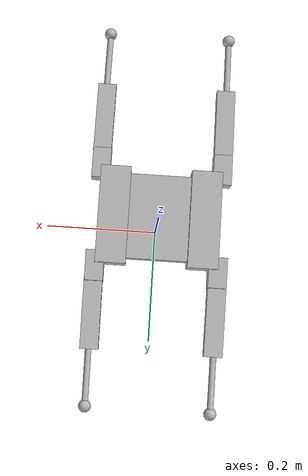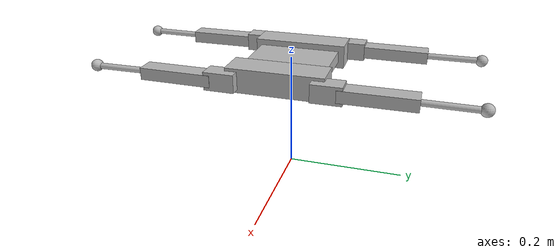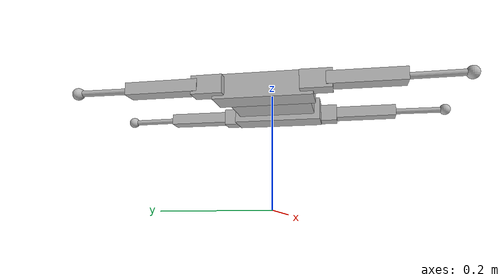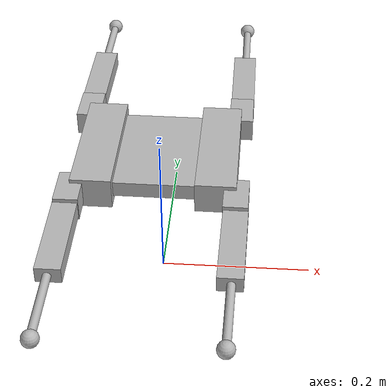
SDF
<?xml version="1.0" ?>
<sdf version='1.5'>
  <model name='LINKS'>
  <plugin name="PacerPlugin" filename="libPacerGazeboPlugin.so"/>
  <pose>0 0 0.19 0 -0 0</pose>
    <link name='BODY0'>
      <pose>0 0 0 0 -0 0</pose>
      <inertial>
        <mass>3.6</mass>
        <inertia>
          <ixx>0.005833</ixx>
          <ixy>0.0</ixy>
          <ixz>-0.0</ixz>
          <iyy>0.003033</iyy>
          <iyz>-0.0</iyz>
          <izz>0.008633</izz>
        </inertia>
      </inertial>

      <visual name='BODY1_visual'>
      <pose>0.075 0 0 0 -0 0</pose>
        <geometry>
          <box>
            <size>0.05 0.16 0.04</size>
          </box>
        </geometry>
      </visual>
      <visual name='BODY0_visual'>
        <geometry>
          <box>
            <size>0.1 0.14 0.02</size>
          </box>
        </geometry>
      </visual>
      <visual name='BODYN_visual'>
      <pose>-0.075 0 0 0 -0 0</pose>
        <geometry>
          <box>
            <size>0.05 0.16 0.04</size>
          </box>
        </geometry>
      </visual>

      <collision name='BODY0_collision'>
        <geometry>
          <box>
            <size>0.1 0.14 0.02</size>
          </box>
        </geometry>
      </collision>

    </link>

<!-- =============================== LF leg =============================== -->
    <joint name='LF_X_1' type='revolute'>
      <pose>-0.025 0.0 0 0 0 0</pose>
      <parent>BODY0</parent>
      <child>LF_LEG_1</child>
      <axis>
        <xyz>1 0 0</xyz>
        <limit>
          <lower>-1e+16</lower>
          <upper>1e+16</upper>
        </limit>
        <dynamics/>
      </axis>
    </joint>

    <link name='LF_LEG_1'>
      <pose>0.10 0.085 0 0 0 1.579</pose>
      <inertial>
        <mass>0.10</mass>
        <inertia>
          <ixx>1.5e-5</ixx>
          <ixy>0.0</ixy>
          <ixz>-0.0</ixz>
          <iyy>2.833e-5</iyy>
          <iyz>-0.0</iyz>
          <izz>2.833e-5</izz>
        </inertia>
      </inertial>

      <visual name='leg1_visual'>
        <geometry>
          <box>
            <size>0.05 0.03 0.03</size>
          </box>
        </geometry>
      </visual>

    </link>

    <joint name='LF_Y_2' type='revolute'>
      <pose>-0.05 0 0 0 0 0</pose>
      <parent>LF_LEG_1</parent>
      <child>LF_LEG_2</child>
      <axis>
        <xyz>0 1 0</xyz>
        <limit>
          <lower>-1e+16</lower>
          <upper>1e+16</upper>
        </limit>
        <dynamics/>
      </axis>

    </joint>

    <link name='LF_LEG_2'>
      <pose>0.1 0.16 0 0 0 1.579</pose>
      <inertial>
        <mass>0.10</mass>
        <inertia>
          <ixx>1.083e-5</ixx>
          <ixy>0.0</ixy>
          <ixz>-0.0</ixz>
          <iyy>0.0001233</iyy>
          <iyz>-0.0</iyz>
          <izz>0.001275</izz>
        </inertia>
      </inertial>

      <visual name='leg2_visual'>
        <geometry>
          <box>
            <size>0.12 0.03 0.02</size>
          </box>
        </geometry>
      </visual>

    </link>

    <joint name='LF_Y_3' type='revolute'>
      <pose>-0.1 0 0 0 0 0</pose>
      <parent>LF_LEG_2</parent>
      <child>LF_FOOT</child>
      <axis>
        <xyz>0 1 0</xyz>
        <limit>
          <lower>-1e+16</lower>
          <upper>1e+16</upper>
        </limit>
        <dynamics/>
      </axis>

    </joint>

    <link name='LF_FOOT'>
      <pose>0.1 0.31 0 0 0 1.579</pose>
      <inertial>
       <pose>-0.05 0 0 0 0 0</pose>
        <mass>0.10</mass>
        <inertia>
          <ixx>5e-7</ixx>
          <ixy>-1.215e-10</ixy>
          <ixz>-0.0</ixz>
          <iyy>3.358e-5</iyy>
          <iyz>-0.0</iyz>
          <izz>3.358e-5</izz>
        </inertia>
      </inertial>

      <visual name='leg3_visual'>
        <pose>-0.05 0 0 0 1.579 0</pose>
        <geometry>
          <cylinder>
            <radius>0.005</radius>
            <length>0.1</length>
          </cylinder>
        </geometry>
      </visual>

      <visual name='LF_FOOT_visual'>
        <pose>0 0 0 0 0 0</pose>
        <geometry>
          <sphere>
            <radius>0.01</radius>
          </sphere>
        </geometry>
      </visual>

      <collision name='LF_FOOT_collision'>
        <pose>0 0 0 0 0 0</pose>
        <geometry>
          <sphere>
            <radius>0.01</radius>
          </sphere>
        </geometry>
        <surface>
          <restitution_coefficient>0</restitution_coefficient>
          <friction>
            <ode>
              <mu>1</mu>
              <mu2>1</mu2>
            </ode>
          </friction>
        </surface>
      </collision>

      <sensor name='LF_FOOT_contact' type='contact'>
        <contact>
          <collision>LF_FOOT_collision</collision>
        </contact>
        <update_rate>1000</update_rate>
      </sensor>
    </link>

<!-- =============================== RF leg =============================== -->
    <joint name='RF_X_1' type='revolute'>
      <pose>-0.025 0 0 0 0 0</pose>
      <parent>BODY0</parent>
      <child>RF_LEG_1</child>
      <axis>
        <xyz>1 0 0</xyz>
        <limit>
          <lower>-1e+16</lower>
          <upper>1e+16</upper>
        </limit>
        <dynamics/>
      </axis>

    </joint>

    <link name='RF_LEG_1'>
      <pose>0.10 -0.085 0 0 0 -1.579</pose>
      <inertial>
        <mass>0.10</mass>
        <inertia>
          <ixx>1.5e-5</ixx>
          <ixy>0.0</ixy>
          <ixz>-0.0</ixz>
          <iyy>2.833e-5</iyy>
          <iyz>-0.0</iyz>
          <izz>2.833e-5</izz>
        </inertia>
      </inertial>

      <visual name='leg1_visual'>
        <geometry>
          <box>
            <size>0.05 0.03 0.03</size>
          </box>
        </geometry>
      </visual>
    </link>

    <joint name='RF_Y_2' type='revolute'>
      <pose>-0.05 0 0 0 0 0</pose>
      <parent>RF_LEG_1</parent>
      <child>RF_LEG_2</child>
      <axis>
        <xyz>0 -1 0</xyz>
        <limit>
          <lower>-1e+16</lower>
          <upper>1e+16</upper>
        </limit>
        <dynamics/>
      </axis>
    </joint>

    <link name='RF_LEG_2'>
      <pose>0.1 -0.16 0 0 0 -1.579</pose>
      <inertial>
        <mass>0.10</mass>
        <inertia>
          <ixx>1.083e-5</ixx>
          <ixy>0.0</ixy>
          <ixz>-0.0</ixz>
          <iyy>0.0001233</iyy>
          <iyz>-0.0</iyz>
          <izz>0.001275</izz>
        </inertia>
      </inertial>

      <visual name='leg2_visual'>
        <geometry>
          <box>
            <size>0.12 0.03 0.02</size>
          </box>
        </geometry>
      </visual>
    </link>

    <joint name='RF_Y_3' type='revolute'>
      <pose>-0.1 0 0 0 0 0</pose>
      <parent>RF_LEG_2</parent>
      <child>RF_FOOT</child>
      <axis>
        <xyz>0 -1 0</xyz>
        <limit>
          <lower>-1e+16</lower>
          <upper>1e+16</upper>
        </limit>
        <dynamics/>
      </axis>
    </joint>

    <link name='RF_FOOT'>
      <pose>0.1 -0.31 0 0 0 -1.579</pose>
      <inertial>
       <pose>-0.05 0 0 0 0 0</pose>
        <mass>0.10</mass>
        <inertia>
          <ixx>5e-7</ixx>
          <ixy>-1.215e-10</ixy>
          <ixz>-0.0</ixz>
          <iyy>3.358e-5</iyy>
          <iyz>-0.0</iyz>
          <izz>3.358e-5</izz>
        </inertia>
      </inertial>

      <visual name='leg3_visual'>
        <pose>-0.05 0 0 0 1.579 0</pose>
        <geometry>
          <cylinder>
            <radius>0.005</radius>
            <length>0.1</length>
          </cylinder>
        </geometry>
      </visual>

      <visual name='RF_FOOT_visual'>
        <pose>0 0 0 0 0 0</pose>
        <geometry>
          <sphere>
            <radius>0.01</radius>
          </sphere>
        </geometry>
      </visual>

      <collision name='RF_FOOT_collision'>
        <pose>0 0 0 0 0 0</pose>
        <geometry>
          <sphere>
            <radius>0.01</radius>
          </sphere>
        </geometry>
        <surface>
          <restitution_coefficient>0</restitution_coefficient>
          <friction>
            <ode>
              <mu>1</mu>
              <mu2>1</mu2>
            </ode>
          </friction>
        </surface>
      </collision>

      <sensor name='RF_FOOT_contact' type='contact'>
        <contact>
          <collision>RF_FOOT_collision</collision>
        </contact>
        <update_rate>1000</update_rate>
      </sensor>
    </link>

<!-- =============================== LH leg =============================== -->
    <joint name='LH_X_1' type='revolute'>
      <pose>0.025 0 0 0 0 0</pose>
      <parent>BODY0</parent>
      <child>LH_LEG_1</child>
      <axis>
        <xyz>-1 0 0</xyz>
        <limit>
          <lower>-1e+16</lower>
          <upper>1e+16</upper>
        </limit>
        <dynamics/>
      </axis>

    </joint>

    <link name='LH_LEG_1'>
      <pose>-0.10 0.085 0 0 0 -1.579</pose>
      <inertial>
        <mass>0.10</mass>
        <inertia>
          <ixx>1.5e-5</ixx>
          <ixy>0.0</ixy>
          <ixz>-0.0</ixz>
          <iyy>2.833e-5</iyy>
          <iyz>-0.0</iyz>
          <izz>2.833e-5</izz>
        </inertia>
      </inertial>

      <visual name='leg1_visual'>
        <geometry>
          <box>
            <size>0.05 0.03 0.03</size>
          </box>
        </geometry>
      </visual>
    </link>

    <joint name='LH_Y_2' type='revolute'>
      <pose>0.05 0 0 0 0 0</pose>
      <parent>LH_LEG_1</parent>
      <child>LH_LEG_2</child>
      <axis>
        <xyz>0 1 0</xyz>
        <limit>
          <lower>-1e+16</lower>
          <upper>1e+16</upper>
        </limit>
        <dynamics/>
      </axis>

    </joint>

    <link name='LH_LEG_2'>
      <pose>-0.1 0.16 0 0 0 -1.579</pose>
      <inertial>
        <mass>0.10</mass>
        <inertia>
          <ixx>1.083e-5</ixx>
          <ixy>0.0</ixy>
          <ixz>-0.0</ixz>
          <iyy>0.0001233</iyy>
          <iyz>-0.0</iyz>
          <izz>0.001275</izz>
        </inertia>
      </inertial>

      <visual name='leg2_visual'>
        <geometry>
          <box>
            <size>0.12 0.03 0.02</size>
          </box>
        </geometry>
      </visual>

    </link>

    <joint name='LH_Y_3' type='revolute'>
      <pose>0.1 0 0 0 0 0</pose>
      <parent>LH_LEG_2</parent>
      <child>LH_FOOT</child>
      <axis>
        <xyz>0 1 0</xyz>
        <limit>
          <lower>-1e+16</lower>
          <upper>1e+16</upper>
        </limit>
        <dynamics/>
      </axis>

    </joint>

    <link name='LH_FOOT'>
      <pose>-0.1 0.31 0 0 0 -1.579</pose>
      <inertial>
       <pose>0.05 0 0 0 0 0</pose>
        <mass>0.10</mass>
        <inertia>
          <ixx>5e-7</ixx>
          <ixy>-1.215e-10</ixy>
          <ixz>-0.0</ixz>
          <iyy>3.358e-5</iyy>
          <iyz>-0.0</iyz>
          <izz>3.358e-5</izz>
        </inertia>
      </inertial>

      <visual name='leg3_visual'>
        <pose>0.05 0 0 0 1.579 0</pose>
        <geometry>
          <cylinder>
            <radius>0.005</radius>
            <length>0.1</length>
          </cylinder>
        </geometry>
      </visual>

      <visual name='LH_FOOT_visual'>
        <pose>0 0 0 0 0 0</pose>
        <geometry>
          <sphere>
            <radius>0.01</radius>
          </sphere>
        </geometry>
      </visual>

      <collision name='LH_FOOT_collision'>
        <pose>0 0 0 0 0 0</pose>
        <geometry>
          <sphere>
            <radius>0.01</radius>
          </sphere>
        </geometry>
        <surface>
          <restitution_coefficient>0</restitution_coefficient>
          <friction>
            <ode>
              <mu>1</mu>
              <mu2>1</mu2>
            </ode>
          </friction>
        </surface>
      </collision>

      <sensor name='LH_FOOT_contact' type='contact'>
        <contact>
          <collision>LH_FOOT_collision</collision>
        </contact>
        <update_rate>1000</update_rate>
      </sensor>
    </link>

<!-- =============================== RH leg =============================== -->
    <joint name='RH_X_1' type='revolute'>
      <pose>0.025 0 0 0 0 0</pose>
      <parent>BODY0</parent>
      <child>RH_LEG_1</child>
      <axis>
        <xyz>-1 0 0</xyz>
        <limit>
          <lower>-1e+16</lower>
          <upper>1e+16</upper>
        </limit>
        <dynamics/>
      </axis>
    </joint>

    <link name='RH_LEG_1'>
      <pose>-0.10 -0.085 0 0 0 1.579</pose>
      <inertial>
        <mass>0.10</mass>
        <inertia>
          <ixx>1.5e-5</ixx>
          <ixy>0.0</ixy>
          <ixz>-0.0</ixz>
          <iyy>2.833e-5</iyy>
          <iyz>-0.0</iyz>
          <izz>2.833e-5</izz>
        </inertia>
      </inertial>

      <visual name='leg1_visual'>
        <geometry>
          <box>
            <size>0.05 0.03 0.03</size>
          </box>
        </geometry>
      </visual>
    </link>

    <joint name='RH_Y_2' type='revolute'>
      <pose>0.05 0 0 0 0 0</pose>
      <parent>RH_LEG_1</parent>
      <child>RH_LEG_2</child>
      <axis>
        <xyz>0 -1 0</xyz>
        <limit>
          <lower>-1e+16</lower>
          <upper>1e+16</upper>
        </limit>
        <dynamics/>
      </axis>

    </joint>

    <link name='RH_LEG_2'>
      <pose>-0.1 -0.16 0 0 0 1.579</pose>
      <inertial>
        <mass>0.10</mass>
        <inertia>
          <ixx>1.083e-5</ixx>
          <ixy>0.0</ixy>
          <ixz>-0.0</ixz>
          <iyy>0.0001233</iyy>
          <iyz>-0.0</iyz>
          <izz>0.001275</izz>
        </inertia>
      </inertial>

      <visual name='leg2_visual'>
        <geometry>
          <box>
            <size>0.12 0.03 0.02</size>
          </box>
        </geometry>
      </visual>

    </link>

    <joint name='RH_Y_3' type='revolute'>
      <pose>0.1 0  0 0 0 0</pose>
      <parent>RH_LEG_2</parent>
      <child>RH_FOOT</child>
      <axis>
        <xyz>0 -1 0</xyz>
        <limit>
          <lower>-1e+16</lower>
          <upper>1e+16</upper>
        </limit>
        <dynamics/>
      </axis>

    </joint>

    <link name='RH_FOOT'>
      <pose>-0.1 -0.31 0 0 0 1.579</pose>
      <inertial>
       <pose>0.05 0 0 0 0 0</pose>
        <mass>0.10</mass>
        <inertia>
          <ixx>5e-7</ixx>
          <ixy>-1.215e-10</ixy>
          <ixz>-0.0</ixz>
          <iyy>3.358e-5</iyy>
          <iyz>-0.0</iyz>
          <izz>3.358e-5</izz>
        </inertia>
      </inertial>

      <visual name='leg3_visual'>
        <pose>0.05 0 0 0 1.579 0</pose>
        <geometry>
          <cylinder>
            <radius>0.005</radius>
            <length>0.1</length>
          </cylinder>
        </geometry>
      </visual>

      <visual name='RH_FOOT_visual'>
        <pose>0 0 0 0 0 0</pose>
        <geometry>
          <sphere>
            <radius>0.01</radius>
          </sphere>
        </geometry>
      </visual>

      <collision name='RH_FOOT_collision'>
        <pose>0 0 0 0 0 0</pose>
        <geometry>
          <sphere>
            <radius>0.01</radius>
          </sphere>
        </geometry>
        <surface>
          <restitution_coefficient>0</restitution_coefficient>
          <friction>
            <ode>
              <mu>1</mu>
              <mu2>1</mu2>
            </ode>
          </friction>
        </surface>
      </collision>

      <sensor name='RH_FOOT_contact' type='contact'>
        <contact>
          <collision>RH_FOOT_collision</collision>
        </contact>
        <update_rate>1000</update_rate>
      </sensor>
    </link>
  </model>
</sdf>
